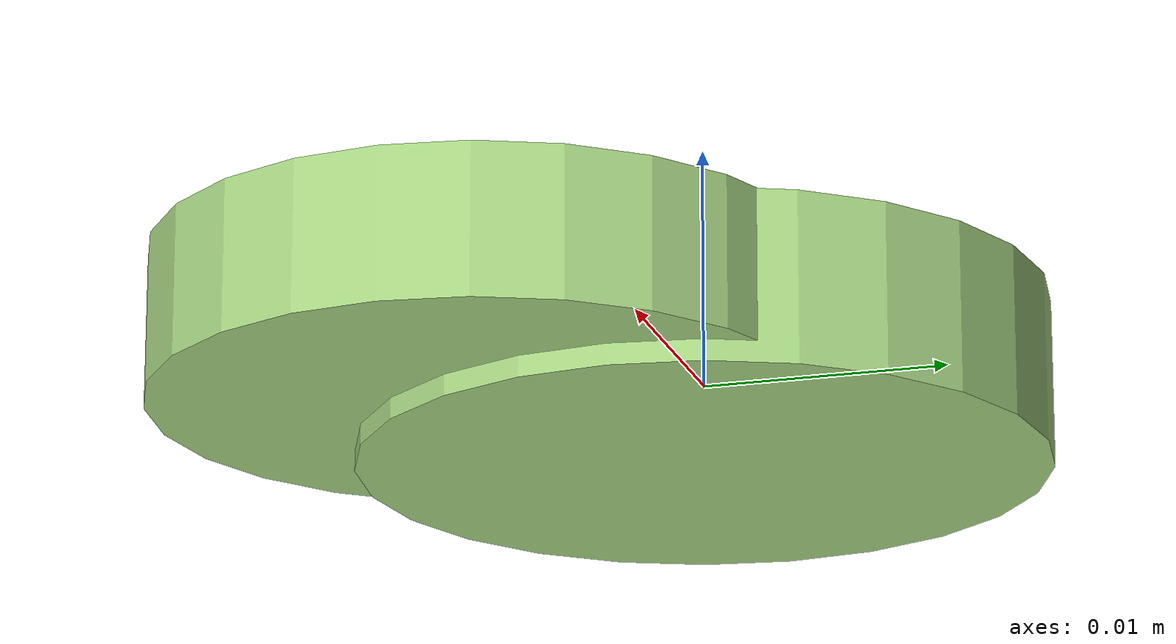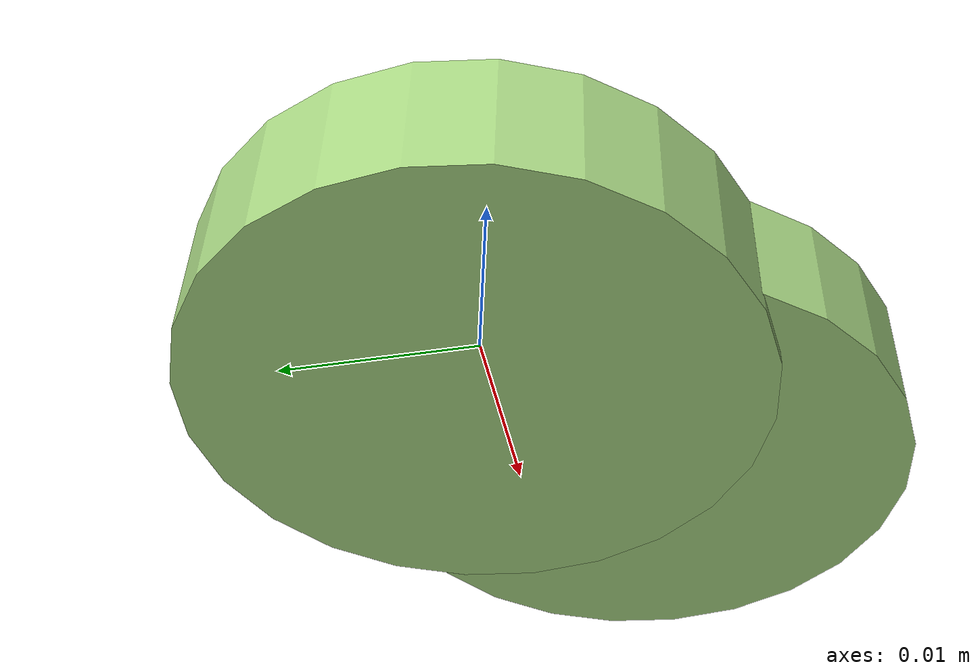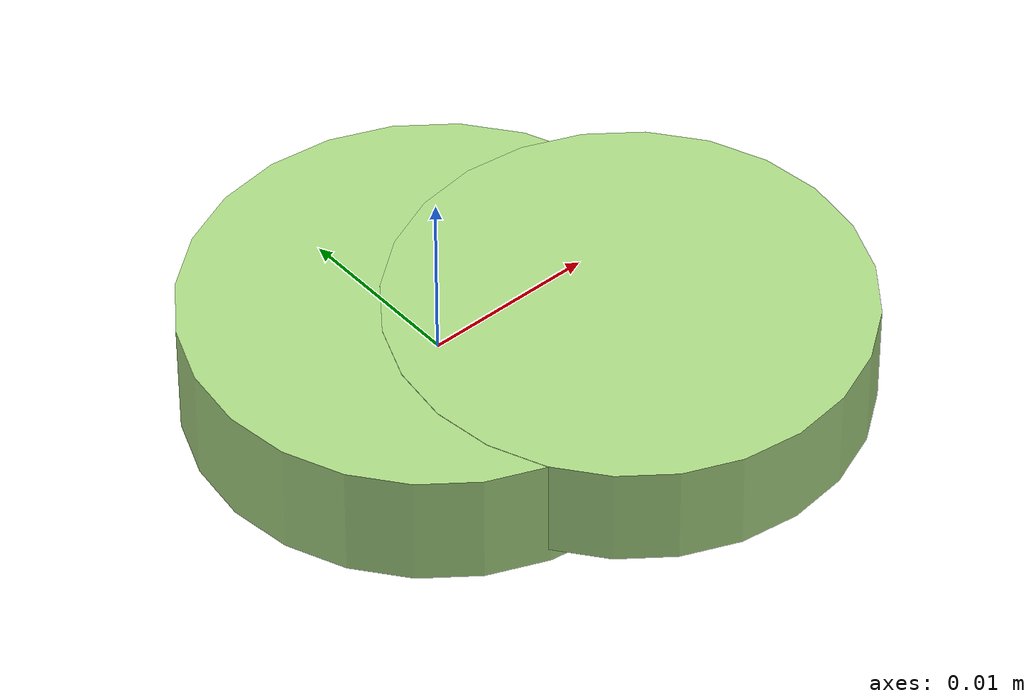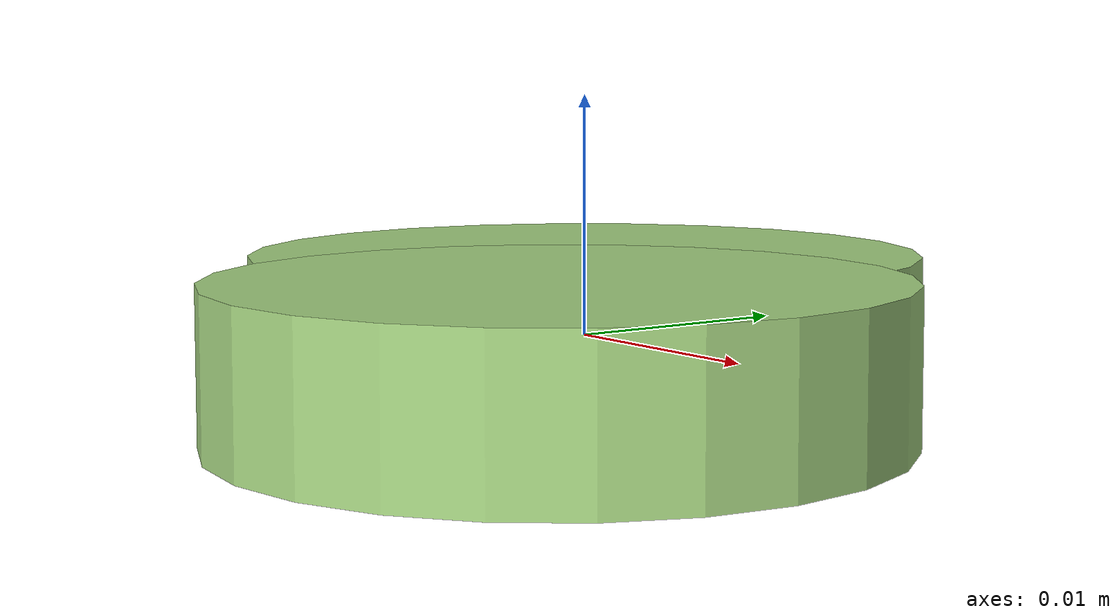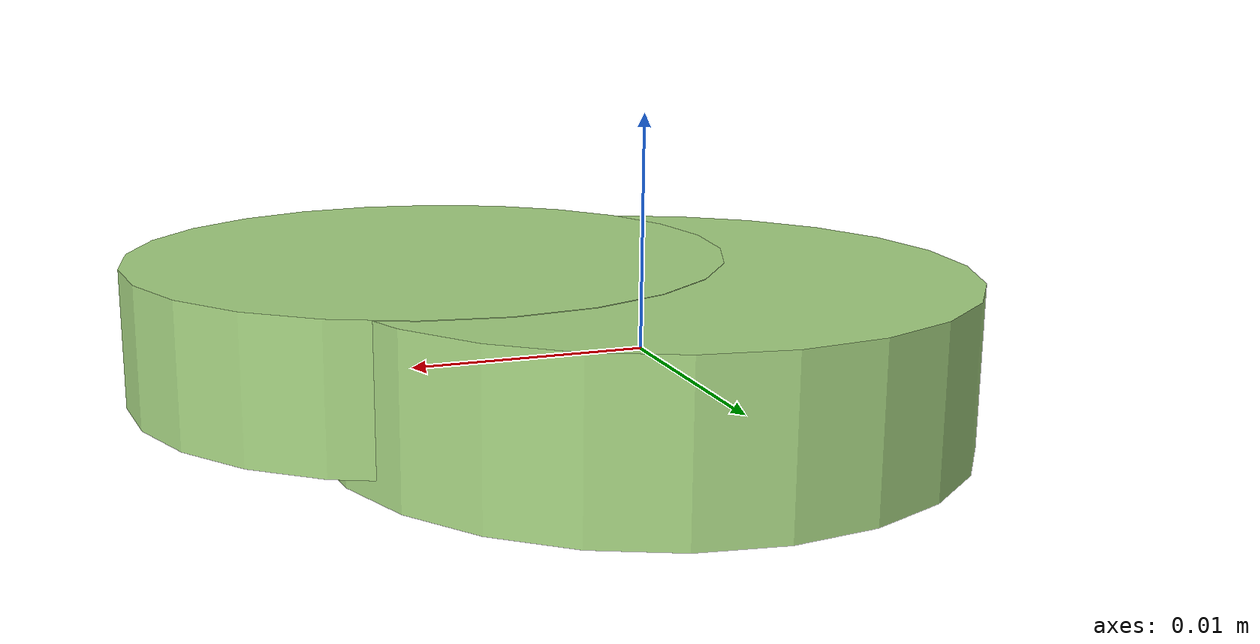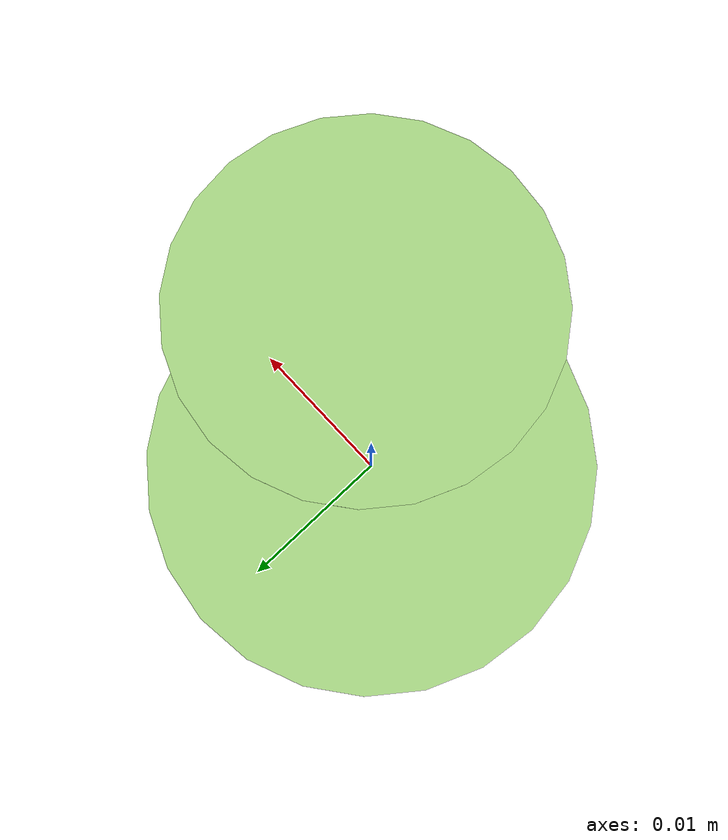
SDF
<?xml version="1.0" ?>
<!-- |    This document was autogenerated by xmacro from data/veggie_template/veggie_base.sdf.xacro  | -->
<!-- |    EDITING THIS FILE BY HAND IS NOT RECOMMENDED                                               | -->
<sdf version="1.8">
	<!-- Parameters -->
	<!-- Base -->
	<!-- Joint 0 -->
	<!-- Link 1 -->
	<!-- Joint 1 -->
	<!-- Link 2 -->
	<!-- Primitives -->
	<!-- All dimensions are half -->
	<!-- Object -->
	<model name="veggie">
		<!-- link0 -->
		<link name="link0">
			<inertial>
				<mass>0.004227628322525588</mass>
				<inertia>
					<ixx>2.2261322271876529e-07</ixx>
					<ixy>0</ixy>
					<ixz>0</ixz>
					<iyy>2.2261322271876529e-07</iyy>
					<iyz>0</iyz>
					<izz>4.1156858177331685e-07</izz>
				</inertia>
			</inertial>
			<visual name="link0_visual">
				<pose>0 0 0 0 0 0</pose>
				<geometry>
					<cylinder>
						<radius>0.013953646152449503</radius>
						<length>0.006911471146211335</length>
					</cylinder>
				</geometry>
				<material>
					<ambient>0.659 0.839 0.514 1</ambient>
					<diffuse>0.659 0.839 0.514 1</diffuse>
					<specular>0 0 0 0</specular>
					<emissive>0 0 0 1</emissive>
				</material>
			</visual>
			<collision name="link0_collision">
				<pose>0 0 0 0 0 0 </pose>
				<geometry>
					<cylinder>
						<radius>0.013953646152449503</radius>
						<length>0.006911471146211335</length>
					</cylinder>
				</geometry>
			</collision>
		</link>
		<!-- link1 -->
		<joint name="joint0" type="fixed">
			<pose relative_to="link0">0.007717767594006181 -0.006710406833848834 0.0004406170123919903 0.0 0.0 0.0</pose>
			<parent>link0</parent>
			<child>link1</child>
		</joint>
		<link name="link1">
			<pose relative_to="joint0">0 0 0 0 0 0</pose>
			<inertial>
				<mass>0.0033891615446196314</mass>
				<inertia>
					<ixx>1.6068051559245383e-07</ixx>
					<ixy>0</ixy>
					<ixz>0</ixz>
					<iyy>1.6068051559245383e-07</iyy>
					<iyz>0</iyz>
					<izz>3.0044840770064465e-07</izz>
				</inertia>
			</inertial>
			<visual name="link1_visual">
				<pose>0 0 0 0 0 0</pose>
				<geometry>
					<cylinder>
						<radius>0.013315387700156712</radius>
						<length>0.006084624045693174</length>
					</cylinder>
				</geometry>
				<material>
					<ambient>0.659 0.839 0.514 1</ambient>
					<diffuse>0.659 0.839 0.514 1</diffuse>
					<specular>0 0 0 0</specular>
					<emissive>0 0 0 1</emissive>
				</material>
			</visual>
			<collision name="link1_collision">
				<pose>0 0 0 0 0 0 </pose>
				<geometry>
					<cylinder>
						<radius>0.013315387700156712</radius>
						<length>0.006084624045693174</length>
					</cylinder>
				</geometry>
			</collision>
		</link>
		<!-- link2 -->
	</model>
</sdf>
